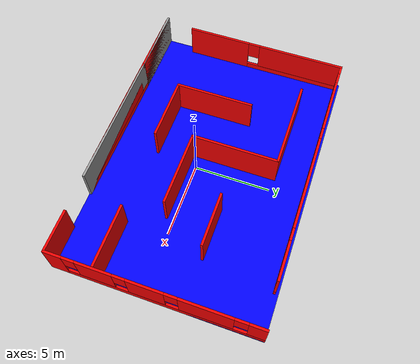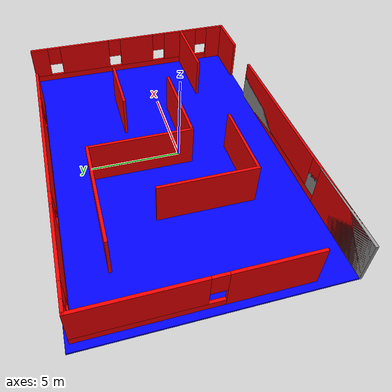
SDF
<?xml version='1.0'?>
<sdf version='1.6'>
  <model name='newMaze'>
    <pose frame=''>-0.314095 0.84259 0 0 -0 0</pose>
    <link name='Floor_0'>
      <collision name='Floor_0_Collision'>
        <geometry>
          <box>
            <size>19.1331 13.25 0.1</size>
          </box>
        </geometry>
        <pose frame=''>0 0 0.05 0 -0 0</pose>
      </collision>
      <visual name='Floor_0_Visual'>
        <pose frame=''>0 0 0.05 0 -0 0</pose>
        <geometry>
          <box>
            <size>19.1331 13.25 0.1</size>
          </box>
        </geometry>
        <material>
          <script>
            <uri>file://media/materials/scripts/gazebo.material</uri>
            <name>Gazebo/Grey</name>
          </script>
          <ambient>0 0 1 1</ambient>
        </material>
        <meta>
          <layer>0</layer>
        </meta>
      </visual>
      <pose frame=''>-0 -0 0 0 -0 0</pose>
    </link>
    <link name='Wall_27'>
      <collision name='Wall_27_Collision'>
        <geometry>
          <box>
            <size>14 0.15 2.5</size>
          </box>
        </geometry>
        <pose frame=''>0 0 1.25 0 -0 0</pose>
      </collision>
      <visual name='Wall_27_Visual'>
        <pose frame=''>0 0 1.25 0 -0 0</pose>
        <geometry>
          <box>
            <size>14 0.15 2.5</size>
          </box>
        </geometry>
        <material>
          <script>
            <uri>file://media/materials/scripts/gazebo.material</uri>
            <name>Gazebo/Grey</name>
          </script>
          <ambient>1 1 1 1</ambient>
        </material>
        <meta>
          <layer>0</layer>
        </meta>
      </visual>
      <pose frame=''>-2.56656 -6.55 0 0 -0 0</pose>
    </link>
    <link name='Wall_28'>
      <collision name='Wall_28_Collision'>
        <geometry>
          <box>
            <size>2.75 0.15 2.5</size>
          </box>
        </geometry>
        <pose frame=''>0 0 1.25 0 -0 0</pose>
      </collision>
      <visual name='Wall_28_Visual'>
        <pose frame=''>0 0 1.25 0 -0 0</pose>
        <geometry>
          <box>
            <size>2.75 0.15 2.5</size>
          </box>
        </geometry>
        <material>
          <script>
            <uri>file://media/materials/scripts/gazebo.material</uri>
            <name>Gazebo/Grey</name>
          </script>
          <ambient>1 0 0 1</ambient>
        </material>
        <meta>
          <layer>0</layer>
        </meta>
      </visual>
      <pose frame=''>8.19156 -6.55 0 0 -0 0</pose>
    </link>
    <link name='Wall_29'>
      <pose frame=''>9.49156 -0 0 0 -0 1.5708</pose>
      <visual name='Wall_29_Visual_0'>
        <pose frame=''>-6.03136 0 1.25 0 -0 0</pose>
        <geometry>
          <box>
            <size>1.18729 0.15 2.5</size>
          </box>
        </geometry>
        <material>
          <script>
            <uri>file://media/materials/scripts/gazebo.material</uri>
            <name>Gazebo/Grey</name>
          </script>
          <ambient>1 0 0 1</ambient>
        </material>
        <meta>
          <layer>0</layer>
        </meta>
      </visual>
      <collision name='Wall_29_Collision_0'>
        <geometry>
          <box>
            <size>1.18729 0.15 2.5</size>
          </box>
        </geometry>
        <pose frame=''>-6.03136 0 1.25 0 -0 0</pose>
      </collision>
      <visual name='Wall_29_Visual_1'>
        <pose frame=''>0.593644 0 0.25 0 -0 0</pose>
        <geometry>
          <box>
            <size>12.0627 0.15 0.5</size>
          </box>
        </geometry>
        <material>
          <script>
            <uri>file://media/materials/scripts/gazebo.material</uri>
            <name>Gazebo/Grey</name>
          </script>
          <ambient>1 0 0 1</ambient>
        </material>
        <meta>
          <layer>0</layer>
        </meta>
      </visual>
      <collision name='Wall_29_Collision_1'>
        <geometry>
          <box>
            <size>12.0627 0.15 0.5</size>
          </box>
        </geometry>
        <pose frame=''>0.593644 0 0.25 0 -0 0</pose>
      </collision>
      <visual name='Wall_29_Visual_2'>
        <pose frame=''>-3.50022 0 1.5 0 -0 0</pose>
        <geometry>
          <box>
            <size>2.27498 0.15 2</size>
          </box>
        </geometry>
        <material>
          <script>
            <uri>file://media/materials/scripts/gazebo.material</uri>
            <name>Gazebo/Grey</name>
          </script>
          <ambient>1 0 0 1</ambient>
        </material>
        <meta>
          <layer>0</layer>
        </meta>
      </visual>
      <collision name='Wall_29_Collision_2'>
        <geometry>
          <box>
            <size>2.27498 0.15 2</size>
          </box>
        </geometry>
        <pose frame=''>-3.50022 0 1.5 0 -0 0</pose>
      </collision>
      <visual name='Wall_29_Visual_3'>
        <pose frame=''>-0.425236 0 1.5 0 -0 0</pose>
        <geometry>
          <box>
            <size>2.27498 0.15 2</size>
          </box>
        </geometry>
        <material>
          <script>
            <uri>file://media/materials/scripts/gazebo.material</uri>
            <name>Gazebo/Grey</name>
          </script>
          <ambient>1 0 0 1</ambient>
        </material>
        <meta>
          <layer>0</layer>
        </meta>
      </visual>
      <collision name='Wall_29_Collision_3'>
        <geometry>
          <box>
            <size>2.27498 0.15 2</size>
          </box>
        </geometry>
        <pose frame=''>-0.425236 0 1.5 0 -0 0</pose>
      </collision>
      <visual name='Wall_29_Visual_4'>
        <pose frame=''>3.12864 0 1.5 0 -0 0</pose>
        <geometry>
          <box>
            <size>3.23277 0.15 2</size>
          </box>
        </geometry>
        <material>
          <script>
            <uri>file://media/materials/scripts/gazebo.material</uri>
            <name>Gazebo/Grey</name>
          </script>
          <ambient>1 0 0 1</ambient>
        </material>
        <meta>
          <layer>0</layer>
        </meta>
      </visual>
      <collision name='Wall_29_Collision_4'>
        <geometry>
          <box>
            <size>3.23277 0.15 2</size>
          </box>
        </geometry>
        <pose frame=''>3.12864 0 1.5 0 -0 0</pose>
      </collision>
      <visual name='Wall_29_Visual_5'>
        <pose frame=''>6.08501 0 1.5 0 -0 0</pose>
        <geometry>
          <box>
            <size>1.07998 0.15 2</size>
          </box>
        </geometry>
        <material>
          <script>
            <uri>file://media/materials/scripts/gazebo.material</uri>
            <name>Gazebo/Grey</name>
          </script>
          <ambient>1 0 0 1</ambient>
        </material>
        <meta>
          <layer>0</layer>
        </meta>
      </visual>
      <collision name='Wall_29_Collision_5'>
        <geometry>
          <box>
            <size>1.07998 0.15 2</size>
          </box>
        </geometry>
        <pose frame=''>6.08501 0 1.5 0 -0 0</pose>
      </collision>
      <visual name='Wall_29_Visual_6'>
        <pose frame=''>-5.03771 0 1.9 0 -0 0</pose>
        <geometry>
          <box>
            <size>0.8 0.15 1.2</size>
          </box>
        </geometry>
        <material>
          <script>
            <uri>file://media/materials/scripts/gazebo.material</uri>
            <name>Gazebo/Grey</name>
          </script>
          <ambient>1 0 0 1</ambient>
        </material>
        <meta>
          <layer>0</layer>
        </meta>
      </visual>
      <collision name='Wall_29_Collision_6'>
        <geometry>
          <box>
            <size>0.8 0.15 1.2</size>
          </box>
        </geometry>
        <pose frame=''>-5.03771 0 1.9 0 -0 0</pose>
      </collision>
      <visual name='Wall_29_Visual_7'>
        <pose frame=''>-1.96273 0 1.9 0 -0 0</pose>
        <geometry>
          <box>
            <size>0.8 0.15 1.2</size>
          </box>
        </geometry>
        <material>
          <script>
            <uri>file://media/materials/scripts/gazebo.material</uri>
            <name>Gazebo/Grey</name>
          </script>
          <ambient>1 0 0 1</ambient>
        </material>
        <meta>
          <layer>0</layer>
        </meta>
      </visual>
      <collision name='Wall_29_Collision_7'>
        <geometry>
          <box>
            <size>0.8 0.15 1.2</size>
          </box>
        </geometry>
        <pose frame=''>-1.96273 0 1.9 0 -0 0</pose>
      </collision>
      <visual name='Wall_29_Visual_8'>
        <pose frame=''>1.11226 0 1.9 0 -0 0</pose>
        <geometry>
          <box>
            <size>0.8 0.15 1.2</size>
          </box>
        </geometry>
        <material>
          <script>
            <uri>file://media/materials/scripts/gazebo.material</uri>
            <name>Gazebo/Grey</name>
          </script>
          <ambient>1 0 0 1</ambient>
        </material>
        <meta>
          <layer>0</layer>
        </meta>
      </visual>
      <collision name='Wall_29_Collision_8'>
        <geometry>
          <box>
            <size>0.8 0.15 1.2</size>
          </box>
        </geometry>
        <pose frame=''>1.11226 0 1.9 0 -0 0</pose>
      </collision>
      <visual name='Wall_29_Visual_9'>
        <pose frame=''>5.14502 0 1.9 0 -0 0</pose>
        <geometry>
          <box>
            <size>0.8 0.15 1.2</size>
          </box>
        </geometry>
        <material>
          <script>
            <uri>file://media/materials/scripts/gazebo.material</uri>
            <name>Gazebo/Grey</name>
          </script>
          <ambient>1 0 0 1</ambient>
        </material>
        <meta>
          <layer>0</layer>
        </meta>
      </visual>
      <collision name='Wall_29_Collision_9'>
        <geometry>
          <box>
            <size>0.8 0.15 1.2</size>
          </box>
        </geometry>
        <pose frame=''>5.14502 0 1.9 0 -0 0</pose>
      </collision>
    </link>
    <link name='Wall_30'>
      <pose frame=''>-9.13869 0.941793 0 0 -0 1.5708</pose>
      <visual name='Wall_30_Visual_0'>
        <pose frame=''>-3.34366 0 1.25 0 -0 0</pose>
        <geometry>
          <box>
            <size>4.31268 0.15 2.5</size>
          </box>
        </geometry>
        <material>
          <script>
            <uri>file://media/materials/scripts/gazebo.material</uri>
            <name>Gazebo/Grey</name>
          </script>
          <ambient>1 0 0 1</ambient>
        </material>
        <meta>
          <layer>0</layer>
        </meta>
      </visual>
      <collision name='Wall_30_Collision_0'>
        <geometry>
          <box>
            <size>4.31268 0.15 2.5</size>
          </box>
        </geometry>
        <pose frame=''>-3.34366 0 1.25 0 -0 0</pose>
      </collision>
      <visual name='Wall_30_Visual_1'>
        <pose frame=''>2.15634 0 0.25 0 -0 0</pose>
        <geometry>
          <box>
            <size>6.68732 0.15 0.5</size>
          </box>
        </geometry>
        <material>
          <script>
            <uri>file://media/materials/scripts/gazebo.material</uri>
            <name>Gazebo/Grey</name>
          </script>
          <ambient>1 0 0 1</ambient>
        </material>
        <meta>
          <layer>0</layer>
        </meta>
      </visual>
      <collision name='Wall_30_Collision_1'>
        <geometry>
          <box>
            <size>6.68732 0.15 0.5</size>
          </box>
        </geometry>
        <pose frame=''>2.15634 0 0.25 0 -0 0</pose>
      </collision>
      <visual name='Wall_30_Visual_2'>
        <pose frame=''>2.55634 0 1.5 0 -0 0</pose>
        <geometry>
          <box>
            <size>5.88732 0.15 2</size>
          </box>
        </geometry>
        <material>
          <script>
            <uri>file://media/materials/scripts/gazebo.material</uri>
            <name>Gazebo/Grey</name>
          </script>
          <ambient>1 0 0 1</ambient>
        </material>
        <meta>
          <layer>0</layer>
        </meta>
      </visual>
      <collision name='Wall_30_Collision_2'>
        <geometry>
          <box>
            <size>5.88732 0.15 2</size>
          </box>
        </geometry>
        <pose frame=''>2.55634 0 1.5 0 -0 0</pose>
      </collision>
      <visual name='Wall_30_Visual_3'>
        <pose frame=''>-0.787319 0 1.9 0 -0 0</pose>
        <geometry>
          <box>
            <size>0.8 0.15 1.2</size>
          </box>
        </geometry>
        <material>
          <script>
            <uri>file://media/materials/scripts/gazebo.material</uri>
            <name>Gazebo/Grey</name>
          </script>
          <ambient>1 0 0 1</ambient>
        </material>
        <meta>
          <layer>0</layer>
        </meta>
      </visual>
      <collision name='Wall_30_Collision_3'>
        <geometry>
          <box>
            <size>0.8 0.15 1.2</size>
          </box>
        </geometry>
        <pose frame=''>-0.787319 0 1.9 0 -0 0</pose>
      </collision>
    </link>
    <link name='Wall_31'>
      <pose frame=''>-1.21369 6.36679 0 0 -0 0</pose>
      <visual name='Wall_31_Visual_0'>
        <pose frame=''>-7.6584 0 1.25 0 -0 0</pose>
        <geometry>
          <box>
            <size>0.683192 0.15 2.5</size>
          </box>
        </geometry>
        <material>
          <script>
            <uri>file://media/materials/scripts/gazebo.material</uri>
            <name>Gazebo/Grey</name>
          </script>
          <ambient>1 0 0 1</ambient>
        </material>
        <meta>
          <layer>0</layer>
        </meta>
      </visual>
      <collision name='Wall_31_Collision_0'>
        <geometry>
          <box>
            <size>0.683192 0.15 2.5</size>
          </box>
        </geometry>
        <pose frame=''>-7.6584 0 1.25 0 -0 0</pose>
      </collision>
      <visual name='Wall_31_Visual_1'>
        <pose frame=''>0.341596 0 0.25 0 -0 0</pose>
        <geometry>
          <box>
            <size>15.3168 0.15 0.5</size>
          </box>
        </geometry>
        <material>
          <script>
            <uri>file://media/materials/scripts/gazebo.material</uri>
            <name>Gazebo/Grey</name>
          </script>
          <ambient>1 0 0 1</ambient>
        </material>
        <meta>
          <layer>0</layer>
        </meta>
      </visual>
      <collision name='Wall_31_Collision_1'>
        <geometry>
          <box>
            <size>15.3168 0.15 0.5</size>
          </box>
        </geometry>
        <pose frame=''>0.341596 0 0.25 0 -0 0</pose>
      </collision>
      <visual name='Wall_31_Visual_2'>
        <pose frame=''>-4.54756 0 1.5 0 -0 0</pose>
        <geometry>
          <box>
            <size>3.9385 0.15 2</size>
          </box>
        </geometry>
        <material>
          <script>
            <uri>file://media/materials/scripts/gazebo.material</uri>
            <name>Gazebo/Grey</name>
          </script>
          <ambient>1 0 0 1</ambient>
        </material>
        <meta>
          <layer>0</layer>
        </meta>
      </visual>
      <collision name='Wall_31_Collision_2'>
        <geometry>
          <box>
            <size>3.9385 0.15 2</size>
          </box>
        </geometry>
        <pose frame=''>-4.54756 0 1.5 0 -0 0</pose>
      </collision>
      <visual name='Wall_31_Visual_3'>
        <pose frame=''>1.45118 0 1.5 0 -0 0</pose>
        <geometry>
          <box>
            <size>6.45898 0.15 2</size>
          </box>
        </geometry>
        <material>
          <script>
            <uri>file://media/materials/scripts/gazebo.material</uri>
            <name>Gazebo/Grey</name>
          </script>
          <ambient>1 0 0 1</ambient>
        </material>
        <meta>
          <layer>0</layer>
        </meta>
      </visual>
      <collision name='Wall_31_Collision_3'>
        <geometry>
          <box>
            <size>6.45898 0.15 2</size>
          </box>
        </geometry>
        <pose frame=''>1.45118 0 1.5 0 -0 0</pose>
      </collision>
      <visual name='Wall_31_Visual_4'>
        <pose frame=''>6.74034 0 1.5 0 -0 0</pose>
        <geometry>
          <box>
            <size>2.51933 0.15 2</size>
          </box>
        </geometry>
        <material>
          <script>
            <uri>file://media/materials/scripts/gazebo.material</uri>
            <name>Gazebo/Grey</name>
          </script>
          <ambient>1 0 0 1</ambient>
        </material>
        <meta>
          <layer>0</layer>
        </meta>
      </visual>
      <collision name='Wall_31_Collision_4'>
        <geometry>
          <box>
            <size>2.51933 0.15 2</size>
          </box>
        </geometry>
        <pose frame=''>6.74034 0 1.5 0 -0 0</pose>
      </collision>
      <visual name='Wall_31_Visual_5'>
        <pose frame=''>-6.91681 0 1.9 0 -0 0</pose>
        <geometry>
          <box>
            <size>0.8 0.15 1.2</size>
          </box>
        </geometry>
        <material>
          <script>
            <uri>file://media/materials/scripts/gazebo.material</uri>
            <name>Gazebo/Grey</name>
          </script>
          <ambient>1 0 0 1</ambient>
        </material>
        <meta>
          <layer>0</layer>
        </meta>
      </visual>
      <collision name='Wall_31_Collision_5'>
        <geometry>
          <box>
            <size>0.8 0.15 1.2</size>
          </box>
        </geometry>
        <pose frame=''>-6.91681 0 1.9 0 -0 0</pose>
      </collision>
      <visual name='Wall_31_Visual_6'>
        <pose frame=''>-2.17831 0 1.9 0 -0 0</pose>
        <geometry>
          <box>
            <size>0.8 0.15 1.2</size>
          </box>
        </geometry>
        <material>
          <script>
            <uri>file://media/materials/scripts/gazebo.material</uri>
            <name>Gazebo/Grey</name>
          </script>
          <ambient>1 0 0 1</ambient>
        </material>
        <meta>
          <layer>0</layer>
        </meta>
      </visual>
      <collision name='Wall_31_Collision_6'>
        <geometry>
          <box>
            <size>0.8 0.15 1.2</size>
          </box>
        </geometry>
        <pose frame=''>-2.17831 0 1.9 0 -0 0</pose>
      </collision>
      <visual name='Wall_31_Visual_7'>
        <pose frame=''>5.08067 0 1.9 0 -0 0</pose>
        <geometry>
          <box>
            <size>0.8 0.15 1.2</size>
          </box>
        </geometry>
        <material>
          <script>
            <uri>file://media/materials/scripts/gazebo.material</uri>
            <name>Gazebo/Grey</name>
          </script>
          <ambient>1 0 0 1</ambient>
        </material>
        <meta>
          <layer>0</layer>
        </meta>
      </visual>
      <collision name='Wall_31_Collision_7'>
        <geometry>
          <box>
            <size>0.8 0.15 1.2</size>
          </box>
        </geometry>
        <pose frame=''>5.08067 0 1.9 0 -0 0</pose>
      </collision>
    </link>
    <link name='Wall_32'>
      <collision name='Wall_32_Collision'>
        <geometry>
          <box>
            <size>6 0.15 2.5</size>
          </box>
        </geometry>
        <pose frame=''>0 0 1.25 0 -0 0</pose>
      </collision>
      <visual name='Wall_32_Visual'>
        <pose frame=''>0 0 1.25 0 -0 0</pose>
        <geometry>
          <box>
            <size>6 0.15 2.5</size>
          </box>
        </geometry>
        <material>
          <script>
            <uri>file://media/materials/scripts/gazebo.material</uri>
            <name>Gazebo/Grey</name>
          </script>
          <ambient>1 0 0 1</ambient>
        </material>
        <meta>
          <layer>0</layer>
        </meta>
      </visual>
      <pose frame=''>-3.44116 4.28806 0 0 -0 0</pose>
    </link>
    <link name='Wall_33'>
      <collision name='Wall_33_Collision'>
        <geometry>
          <box>
            <size>5.75 0.15 2.5</size>
          </box>
        </geometry>
        <pose frame=''>0 0 1.25 0 -0 0</pose>
      </collision>
      <visual name='Wall_33_Visual'>
        <pose frame=''>0 0 1.25 0 -0 0</pose>
        <geometry>
          <box>
            <size>5.75 0.15 2.5</size>
          </box>
        </geometry>
        <material>
          <script>
            <uri>file://media/materials/scripts/gazebo.material</uri>
            <name>Gazebo/Grey</name>
          </script>
          <ambient>1 0 0 1</ambient>
        </material>
        <meta>
          <layer>0</layer>
        </meta>
      </visual>
      <pose frame=''>-0.516163 1.48806 0 0 0 -1.5708</pose>
    </link>
    <link name='Wall_34'>
      <collision name='Wall_34_Collision'>
        <geometry>
          <box>
            <size>5 0.15 2.5</size>
          </box>
        </geometry>
        <pose frame=''>0 0 1.25 0 -0 0</pose>
      </collision>
      <visual name='Wall_34_Visual'>
        <pose frame=''>0 0 1.25 0 -0 0</pose>
        <geometry>
          <box>
            <size>5 0.15 2.5</size>
          </box>
        </geometry>
        <material>
          <script>
            <uri>file://media/materials/scripts/gazebo.material</uri>
            <name>Gazebo/Grey</name>
          </script>
          <ambient>1 0 0 1</ambient>
        </material>
        <meta>
          <layer>0</layer>
        </meta>
      </visual>
      <pose frame=''>1.90884 -1.31194 0 0 -0 0</pose>
    </link>
    <link name='Wall_35'>
      <collision name='Wall_35_Collision'>
        <geometry>
          <box>
            <size>3.5 0.15 2.5</size>
          </box>
        </geometry>
        <pose frame=''>0 0 1.25 0 -0 0</pose>
      </collision>
      <visual name='Wall_35_Visual'>
        <pose frame=''>0 0 1.25 0 -0 0</pose>
        <geometry>
          <box>
            <size>3.5 0.15 2.5</size>
          </box>
        </geometry>
        <material>
          <script>
            <uri>file://media/materials/scripts/gazebo.material</uri>
            <name>Gazebo/Grey</name>
          </script>
          <ambient>1 0 0 1</ambient>
        </material>
        <meta>
          <layer>0</layer>
        </meta>
      </visual>
      <pose frame=''>4.48338 1.71717 0 0 -0 0</pose>
    </link>
    <link name='Wall_36'>
      <collision name='Wall_36_Collision'>
        <geometry>
          <box>
            <size>5.25 0.15 2.5</size>
          </box>
        </geometry>
        <pose frame=''>0 0 1.25 0 -0 0</pose>
      </collision>
      <visual name='Wall_36_Visual'>
        <pose frame=''>0 0 1.25 0 -0 0</pose>
        <geometry>
          <box>
            <size>5.25 0.15 2.5</size>
          </box>
        </geometry>
        <material>
          <script>
            <uri>file://media/materials/scripts/gazebo.material</uri>
            <name>Gazebo/Grey</name>
          </script>
          <ambient>1 0 0 1</ambient>
        </material>
        <meta>
          <layer>0</layer>
        </meta>
      </visual>
      <pose frame=''>-4.04732 -1.08488 0 0 0 -1.5708</pose>
    </link>
    <link name='Wall_37'>
      <collision name='Wall_37_Collision'>
        <geometry>
          <box>
            <size>4.25 0.15 2.5</size>
          </box>
        </geometry>
        <pose frame=''>0 0 1.25 0 -0 0</pose>
      </collision>
      <visual name='Wall_37_Visual'>
        <pose frame=''>0 0 1.25 0 -0 0</pose>
        <geometry>
          <box>
            <size>4.25 0.15 2.5</size>
          </box>
        </geometry>
        <material>
          <script>
            <uri>file://media/materials/scripts/gazebo.material</uri>
            <name>Gazebo/Grey</name>
          </script>
          <ambient>1 0 0 1</ambient>
        </material>
        <meta>
          <layer>0</layer>
        </meta>
      </visual>
      <pose frame=''>-1.99732 -3.63488 0 0 -0 0</pose>
    </link>
    <link name='Wall_38'>
      <collision name='Wall_38_Collision'>
        <geometry>
          <box>
            <size>4 0.15 2.5</size>
          </box>
        </geometry>
        <pose frame=''>0 0 1.25 0 -0 0</pose>
      </collision>
      <visual name='Wall_38_Visual'>
        <pose frame=''>0 0 1.25 0 -0 0</pose>
        <geometry>
          <box>
            <size>4 0.15 2.5</size>
          </box>
        </geometry>
        <material>
          <script>
            <uri>file://media/materials/scripts/gazebo.material</uri>
            <name>Gazebo/Grey</name>
          </script>
          <ambient>1 0 0 1</ambient>
        </material>
        <meta>
          <layer>0</layer>
        </meta>
      </visual>
      <pose frame=''>7.40509 -3.57584 0 0 -0 0</pose>
    </link>
    <link name='Wall_40'>
      <pose frame=''>-2.56656 -6.55 0 0 -0 0</pose>
      <visual name='Wall_40_Visual_0'>
        <pose frame=''>-4.69243 0 1.25 0 -0 0</pose>
        <geometry>
          <box>
            <size>4.61514 0.15 2.5</size>
          </box>
        </geometry>
        <material>
          <script>
            <uri>file://media/materials/scripts/gazebo.material</uri>
            <name>Gazebo/Grey</name>
          </script>
          <ambient>1 0 0 1</ambient>
        </material>
        <meta>
          <layer>0</layer>
        </meta>
      </visual>
      <collision name='Wall_40_Collision_0'>
        <geometry>
          <box>
            <size>4.61514 0.15 2.5</size>
          </box>
        </geometry>
        <pose frame=''>-4.69243 0 1.25 0 -0 0</pose>
      </collision>
      <visual name='Wall_40_Visual_1'>
        <pose frame=''>2.30757 0 0.25 0 -0 0</pose>
        <geometry>
          <box>
            <size>9.38486 0.15 0.5</size>
          </box>
        </geometry>
        <material>
          <script>
            <uri>file://media/materials/scripts/gazebo.material</uri>
            <name>Gazebo/Grey</name>
          </script>
          <ambient>1 0 0 1</ambient>
        </material>
        <meta>
          <layer>0</layer>
        </meta>
      </visual>
      <collision name='Wall_40_Collision_1'>
        <geometry>
          <box>
            <size>9.38486 0.15 0.5</size>
          </box>
        </geometry>
        <pose frame=''>2.30757 0 0.25 0 -0 0</pose>
      </collision>
      <visual name='Wall_40_Visual_2'>
        <pose frame=''>2.70757 0 1.5 0 -0 0</pose>
        <geometry>
          <box>
            <size>8.58486 0.15 2</size>
          </box>
        </geometry>
        <material>
          <script>
            <uri>file://media/materials/scripts/gazebo.material</uri>
            <name>Gazebo/Grey</name>
          </script>
          <ambient>1 0 0 1</ambient>
        </material>
        <meta>
          <layer>0</layer>
        </meta>
      </visual>
      <collision name='Wall_40_Collision_2'>
        <geometry>
          <box>
            <size>8.58486 0.15 2</size>
          </box>
        </geometry>
        <pose frame=''>2.70757 0 1.5 0 -0 0</pose>
      </collision>
      <visual name='Wall_40_Visual_3'>
        <pose frame=''>-1.98486 0 1.9 0 -0 0</pose>
        <geometry>
          <box>
            <size>0.8 0.15 1.2</size>
          </box>
        </geometry>
        <material>
          <script>
            <uri>file://media/materials/scripts/gazebo.material</uri>
            <name>Gazebo/Grey</name>
          </script>
          <ambient>1 0 0 1</ambient>
        </material>
        <meta>
          <layer>0</layer>
        </meta>
      </visual>
      <collision name='Wall_40_Collision_3'>
        <geometry>
          <box>
            <size>0.8 0.15 1.2</size>
          </box>
        </geometry>
        <pose frame=''>-1.98486 0 1.9 0 -0 0</pose>
      </collision>
    </link>
    <static>1</static>
  </model>
</sdf>
